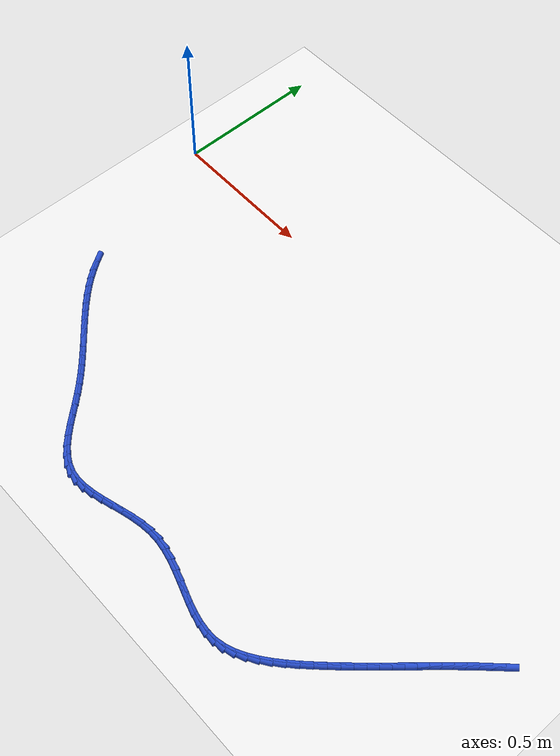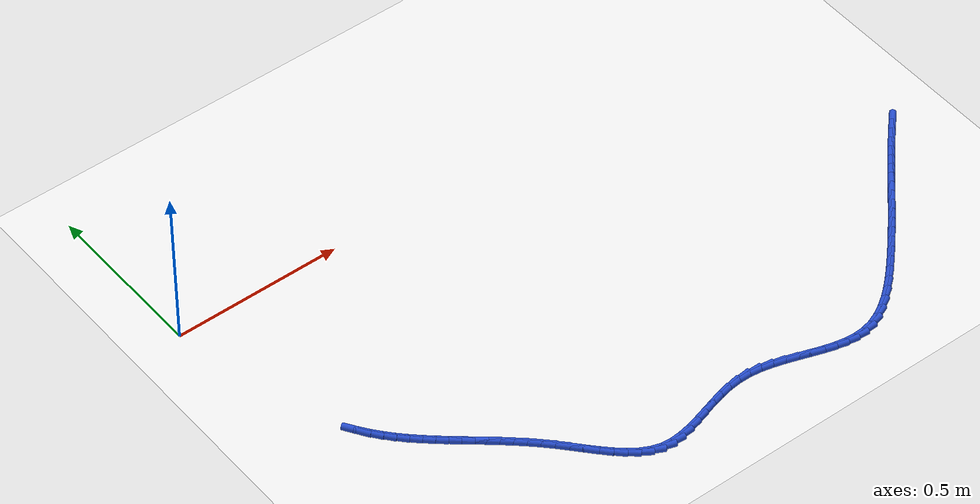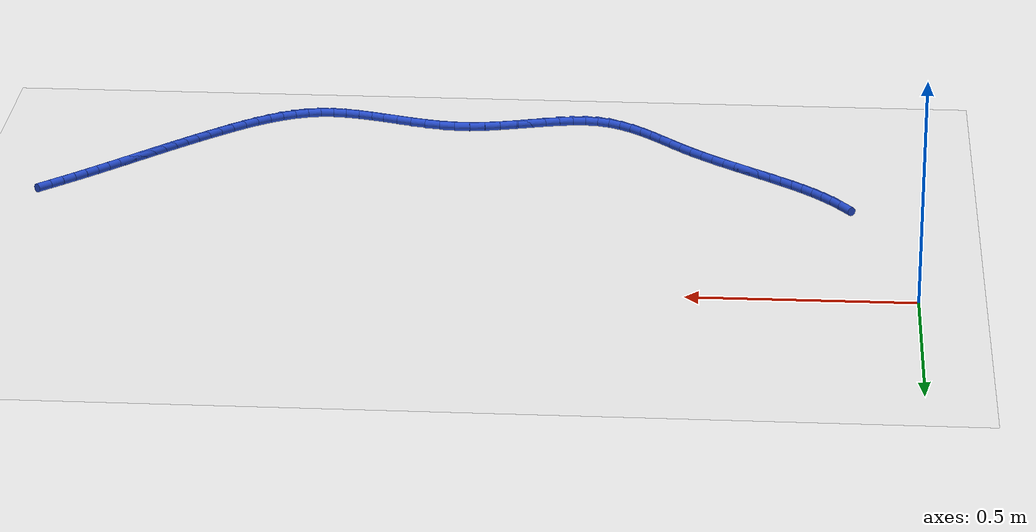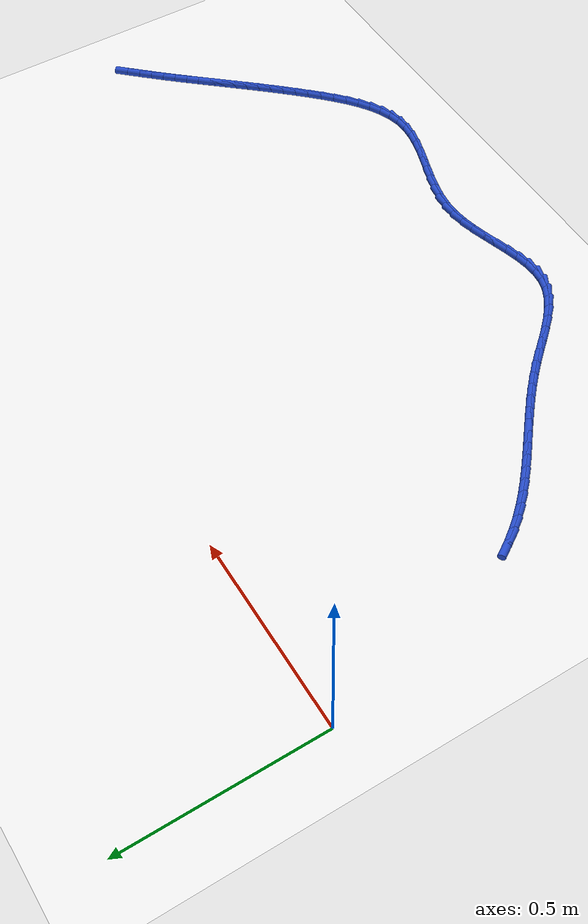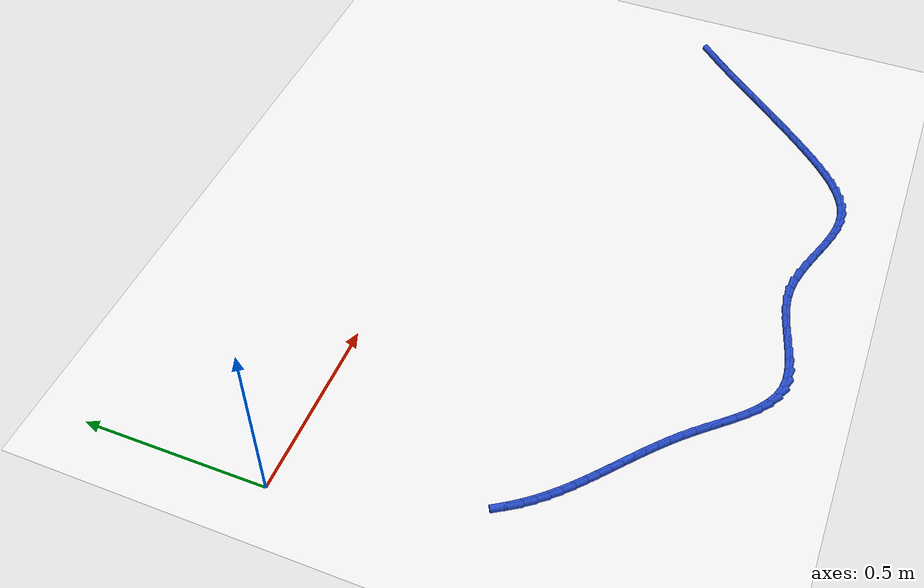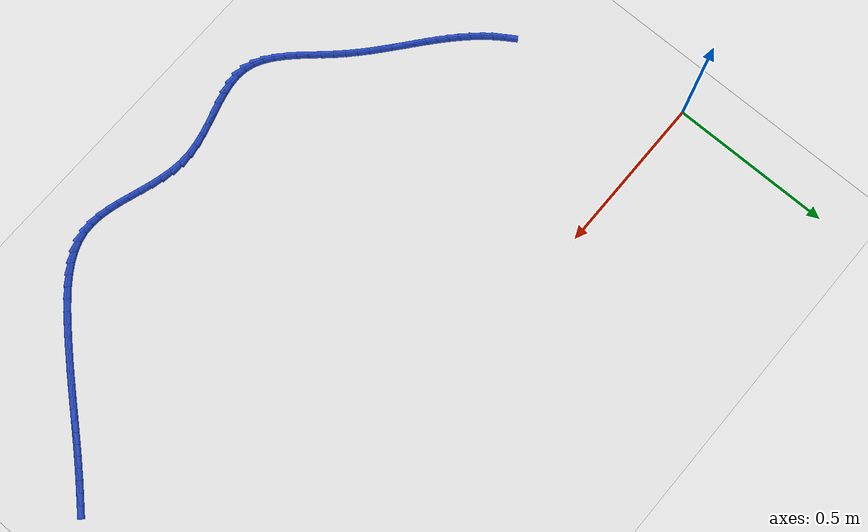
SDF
<sdf version="1.6">
 <world name="default">
  <model name="ground_plane">
   <static>1</static>
   <link name="link">
    <collision name="collision">
     <geometry><plane><normal>0 0 1</normal><size>100 100</size></plane></geometry>
     <surface><friction><ode><mu>100</mu><mu2>50</mu2></ode></friction></surface>
    </collision>
    <visual name="visual">
     <cast_shadows>0</cast_shadows>
     <geometry><plane><normal>0 0 1</normal><size>100 100</size></plane></geometry>
     <material>
      <script><uri>file://media/materials/scripts/gazebo.material</uri><name>Gazebo/WhiteGlow</name></script>
     </material>
    </visual>
   </link>
  </model>
  <model name="line">
   <link name="link_117">
    <pose>1.9566995996869232 -0.5602385863097629 0.01 0 1.57 0.8110290696298452</pose>
    <collision name="collision">
     <geometry><cylinder><radius>0.01</radius><length>0.08</length></cylinder></geometry>
    </collision>
    <visual name="visual">
     <material>
      <script><name>Gazebo/Blue</name><uri>file://media/materials/scripts/gazebo.material</uri></script>
     </material>
     <geometry><cylinder><radius>0.01</radius><length>0.08</length></cylinder></geometry>
    </visual>
   </link>
   <link name="link_118">
    <pose>1.9325285052392909 -0.5856816142168829 0.01 0 1.57 0.8147751303347857</pose>
    <collision name="collision">
     <geometry><cylinder><radius>0.01</radius><length>0.08</length></cylinder></geometry>
    </collision>
    <visual name="visual">
     <material>
      <script><name>Gazebo/Blue</name><uri>file://media/materials/scripts/gazebo.material</uri></script>
     </material>
     <geometry><cylinder><radius>0.01</radius><length>0.08</length></cylinder></geometry>
    </visual>
   </link>
   <link name="link_119">
    <pose>1.9087295957915758 -0.6109215507849404 0.01 0 1.57 0.8254772274303617</pose>
    <collision name="collision">
     <geometry><cylinder><radius>0.01</radius><length>0.08</length></cylinder></geometry>
    </collision>
    <visual name="visual">
     <material>
      <script><name>Gazebo/Blue</name><uri>file://media/materials/scripts/gazebo.material</uri></script>
     </material>
     <geometry><cylinder><radius>0.01</radius><length>0.08</length></cylinder></geometry>
    </visual>
   </link>
   <link name="link_120">
    <pose>1.8855641910838412 -0.6360224606711479 0.01 0 1.57 0.8349274374636908</pose>
    <collision name="collision">
     <geometry><cylinder><radius>0.01</radius><length>0.08</length></cylinder></geometry>
    </collision>
    <visual name="visual">
     <material>
      <script><name>Gazebo/Blue</name><uri>file://media/materials/scripts/gazebo.material</uri></script>
     </material>
     <geometry><cylinder><radius>0.01</radius><length>0.08</length></cylinder></geometry>
    </visual>
   </link>
   <link name="link_121">
    <pose>1.8629362549979693 -0.6610107228855716 0.01 0 1.57 0.8424630305905666</pose>
    <collision name="collision">
     <geometry><cylinder><radius>0.01</radius><length>0.08</length></cylinder></geometry>
    </collision>
    <visual name="visual">
     <material>
      <script><name>Gazebo/Blue</name><uri>file://media/materials/scripts/gazebo.material</uri></script>
     </material>
     <geometry><cylinder><radius>0.01</radius><length>0.08</length></cylinder></geometry>
    </visual>
   </link>
   <link name="link_122">
    <pose>1.8407277287025947 -0.6859103939908286 0.01 0 1.57 0.8479569134185778</pose>
    <collision name="collision">
     <geometry><cylinder><radius>0.01</radius><length>0.08</length></cylinder></geometry>
    </collision>
    <visual name="visual">
     <material>
      <script><name>Gazebo/Blue</name><uri>file://media/materials/scripts/gazebo.material</uri></script>
     </material>
     <geometry><cylinder><radius>0.01</radius><length>0.08</length></cylinder></geometry>
    </visual>
   </link>
   <link name="link_123">
    <pose>1.818820553366352 -0.7107455305495374 0.01 0 1.57 0.8513143874718408</pose>
    <collision name="collision">
     <geometry><cylinder><radius>0.01</radius><length>0.08</length></cylinder></geometry>
    </collision>
    <visual name="visual">
     <material>
      <script><name>Gazebo/Blue</name><uri>file://media/materials/scripts/gazebo.material</uri></script>
     </material>
     <geometry><cylinder><radius>0.01</radius><length>0.08</length></cylinder></geometry>
    </visual>
   </link>
   <link name="link_124">
    <pose>1.7970966701578759 -0.7355401891243153 0.01 0 1.57 0.852476453444885</pose>
    <collision name="collision">
     <geometry><cylinder><radius>0.01</radius><length>0.08</length></cylinder></geometry>
    </collision>
    <visual name="visual">
     <material>
      <script><name>Gazebo/Blue</name><uri>file://media/materials/scripts/gazebo.material</uri></script>
     </material>
     <geometry><cylinder><radius>0.01</radius><length>0.08</length></cylinder></geometry>
    </visual>
   </link>
   <link name="link_125">
    <pose>1.7754380202458018 -0.7603184262777807 0.01 0 1.57 0.8514218929924533</pose>
    <collision name="collision">
     <geometry><cylinder><radius>0.01</radius><length>0.08</length></cylinder></geometry>
    </collision>
    <visual name="visual">
     <material>
      <script><name>Gazebo/Blue</name><uri>file://media/materials/scripts/gazebo.material</uri></script>
     </material>
     <geometry><cylinder><radius>0.01</radius><length>0.08</length></cylinder></geometry>
    </visual>
   </link>
   <link name="link_126">
    <pose>1.7537265447987633 -0.7851042985725508 0.01 0 1.57 0.8481680348671361</pose>
    <collision name="collision">
     <geometry><cylinder><radius>0.01</radius><length>0.08</length></cylinder></geometry>
    </collision>
    <visual name="visual">
     <material>
      <script><name>Gazebo/Blue</name><uri>file://media/materials/scripts/gazebo.material</uri></script>
     </material>
     <geometry><cylinder><radius>0.01</radius><length>0.08</length></cylinder></geometry>
    </visual>
   </link>
   <link name="link_127">
    <pose>1.731844184985396 -0.8099218625712438 0.01 0 1.57 0.8427701705988891</pose>
    <collision name="collision">
     <geometry><cylinder><radius>0.01</radius><length>0.08</length></cylinder></geometry>
    </collision>
    <visual name="visual">
     <material>
      <script><name>Gazebo/Blue</name><uri>file://media/materials/scripts/gazebo.material</uri></script>
     </material>
     <geometry><cylinder><radius>0.01</radius><length>0.08</length></cylinder></geometry>
    </visual>
   </link>
   <link name="link_128">
    <pose>1.709672881974335 -0.8347951748364778 0.01 0 1.57 0.8353196431394171</pose>
    <collision name="collision">
     <geometry><cylinder><radius>0.01</radius><length>0.08</length></cylinder></geometry>
    </collision>
    <visual name="visual">
     <material>
      <script><name>Gazebo/Blue</name><uri>file://media/materials/scripts/gazebo.material</uri></script>
     </material>
     <geometry><cylinder><radius>0.01</radius><length>0.08</length></cylinder></geometry>
    </visual>
   </link>
   <link name="link_129">
    <pose>1.6870945769342143 -0.85974829193087 0.01 0 1.57 0.8259406908876092</pose>
    <collision name="collision">
     <geometry><cylinder><radius>0.01</radius><length>0.08</length></cylinder></geometry>
    </collision>
    <visual name="visual">
     <material>
      <script><name>Gazebo/Blue</name><uri>file://media/materials/scripts/gazebo.material</uri></script>
     </material>
     <geometry><cylinder><radius>0.01</radius><length>0.08</length></cylinder></geometry>
    </visual>
   </link>
   <link name="link_130">
    <pose>1.6639912110336692 -0.884805270417039 0.01 0 1.57 0.8147861893885437</pose>
    <collision name="collision">
     <geometry><cylinder><radius>0.01</radius><length>0.08</length></cylinder></geometry>
    </collision>
    <visual name="visual">
     <material>
      <script><name>Gazebo/Blue</name><uri>file://media/materials/scripts/gazebo.material</uri></script>
     </material>
     <geometry><cylinder><radius>0.01</radius><length>0.08</length></cylinder></geometry>
    </visual>
   </link>
   <link name="link_131">
    <pose>1.6402447254413344 -0.9099901668576023 0.01 0 1.57 0.8020324916885097</pose>
    <collision name="collision">
     <geometry><cylinder><radius>0.01</radius><length>0.08</length></cylinder></geometry>
    </collision>
    <visual name="visual">
     <material>
      <script><name>Gazebo/Blue</name><uri>file://media/materials/scripts/gazebo.material</uri></script>
     </material>
     <geometry><cylinder><radius>0.01</radius><length>0.08</length></cylinder></geometry>
    </visual>
   </link>
   <link name="link_132">
    <pose>1.6157370613258444 -0.9353270378151775 0.01 0 1.57 0.7860649848919025</pose>
    <collision name="collision">
     <geometry><cylinder><radius>0.01</radius><length>0.08</length></cylinder></geometry>
    </collision>
    <visual name="visual">
     <material>
      <script><name>Gazebo/Blue</name><uri>file://media/materials/scripts/gazebo.material</uri></script>
     </material>
     <geometry><cylinder><radius>0.01</radius><length>0.08</length></cylinder></geometry>
    </visual>
   </link>
   <link name="link_133">
    <pose>1.5903754888628128 -0.9607224561356739 0.01 0 1.57 0.7592781057779193</pose>
    <collision name="collision">
     <geometry><cylinder><radius>0.01</radius><length>0.08</length></cylinder></geometry>
    </collision>
    <visual name="visual">
     <material>
      <script><name>Gazebo/Blue</name><uri>file://media/materials/scripts/gazebo.material</uri></script>
     </material>
     <geometry><cylinder><radius>0.01</radius><length>0.08</length></cylinder></geometry>
    </visual>
   </link>
   <link name="link_134">
    <pose>1.5641735293253207 -0.9855901694292761 0.01 0 1.57 0.7188027896039337</pose>
    <collision name="collision">
     <geometry><cylinder><radius>0.01</radius><length>0.08</length></cylinder></geometry>
    </collision>
    <visual name="visual">
     <material>
      <script><name>Gazebo/Blue</name><uri>file://media/materials/scripts/gazebo.material</uri></script>
     </material>
     <geometry><cylinder><radius>0.01</radius><length>0.08</length></cylinder></geometry>
    </visual>
   </link>
   <link name="link_135">
    <pose>1.537172560036102 -1.0092147203890969 0.01 0 1.57 0.6627447487869007</pose>
    <collision name="collision">
     <geometry><cylinder><radius>0.01</radius><length>0.08</length></cylinder></geometry>
    </collision>
    <visual name="visual">
     <material>
      <script><name>Gazebo/Blue</name><uri>file://media/materials/scripts/gazebo.material</uri></script>
     </material>
     <geometry><cylinder><radius>0.01</radius><length>0.08</length></cylinder></geometry>
    </visual>
   </link>
   <link name="link_136">
    <pose>1.5094139584237254 -1.0308806512173638 0.01 0 1.57 0.5882120358764731</pose>
    <collision name="collision">
     <geometry><cylinder><radius>0.01</radius><length>0.08</length></cylinder></geometry>
    </collision>
    <visual name="visual">
     <material>
      <script><name>Gazebo/Blue</name><uri>file://media/materials/scripts/gazebo.material</uri></script>
     </material>
     <geometry><cylinder><radius>0.01</radius><length>0.08</length></cylinder></geometry>
    </visual>
   </link>
   <link name="link_137">
    <pose>1.4809391019167586 -1.049872504116303 0.01 0 1.57 0.491446274773474</pose>
    <collision name="collision">
     <geometry><cylinder><radius>0.01</radius><length>0.08</length></cylinder></geometry>
    </collision>
    <visual name="visual">
     <material>
      <script><name>Gazebo/Blue</name><uri>file://media/materials/scripts/gazebo.material</uri></script>
     </material>
     <geometry><cylinder><radius>0.01</radius><length>0.08</length></cylinder></geometry>
    </visual>
   </link>
   <link name="link_138">
    <pose>1.4517893679437683 -1.065474821288142 0.01 0 1.57 0.3684085443527161</pose>
    <collision name="collision">
     <geometry><cylinder><radius>0.01</radius><length>0.08</length></cylinder></geometry>
    </collision>
    <visual name="visual">
     <material>
      <script><name>Gazebo/Blue</name><uri>file://media/materials/scripts/gazebo.material</uri></script>
     </material>
     <geometry><cylinder><radius>0.01</radius><length>0.08</length></cylinder></geometry>
    </visual>
   </link>
   <link name="link_139">
    <pose>1.4220061339333234 -1.0769721449351073 0.01 0 1.57 0.21637755411428886</pose>
    <collision name="collision">
     <geometry><cylinder><radius>0.01</radius><length>0.08</length></cylinder></geometry>
    </collision>
    <visual name="visual">
     <material>
      <script><name>Gazebo/Blue</name><uri>file://media/materials/scripts/gazebo.material</uri></script>
     </material>
     <geometry><cylinder><radius>0.01</radius><length>0.08</length></cylinder></geometry>
    </visual>
   </link>
   <link name="link_140">
    <pose>1.391630775993543 -1.083649222548942 0.01 0 1.57 0.04846865775775622</pose>
    <collision name="collision">
     <geometry><cylinder><radius>0.01</radius><length>0.08</length></cylinder></geometry>
    </collision>
    <visual name="visual">
     <material>
      <script><name>Gazebo/Blue</name><uri>file://media/materials/scripts/gazebo.material</uri></script>
     </material>
     <geometry><cylinder><radius>0.01</radius><length>0.08</length></cylinder></geometry>
    </visual>
   </link>
   <link name="link_141">
    <pose>1.3607023633193174 -1.0851494561702035 0.01 0 1.57 -0.09312807365008118</pose>
    <collision name="collision">
     <geometry><cylinder><radius>0.01</radius><length>0.08</length></cylinder></geometry>
    </collision>
    <visual name="visual">
     <material>
      <script><name>Gazebo/Blue</name><uri>file://media/materials/scripts/gazebo.material</uri></script>
     </material>
     <geometry><cylinder><radius>0.01</radius><length>0.08</length></cylinder></geometry>
    </visual>
   </link>
   <link name="link_142">
    <pose>1.3292529162268403 -1.0822121331890635 0.01 0 1.57 -0.19857089339005493</pose>
    <collision name="collision">
     <geometry><cylinder><radius>0.01</radius><length>0.08</length></cylinder></geometry>
    </collision>
    <visual name="visual">
     <material>
      <script><name>Gazebo/Blue</name><uri>file://media/materials/scripts/gazebo.material</uri></script>
     </material>
     <geometry><cylinder><radius>0.01</radius><length>0.08</length></cylinder></geometry>
    </visual>
   </link>
   <link name="link_143">
    <pose>1.297313113412432 -1.075785121910302 0.01 0 1.57 -0.2700576700416624</pose>
    <collision name="collision">
     <geometry><cylinder><radius>0.01</radius><length>0.08</length></cylinder></geometry>
    </collision>
    <visual name="visual">
     <material>
      <script><name>Gazebo/Blue</name><uri>file://media/materials/scripts/gazebo.material</uri></script>
     </material>
     <geometry><cylinder><radius>0.01</radius><length>0.08</length></cylinder></geometry>
    </visual>
   </link>
   <link name="link_144">
    <pose>1.2649136335724114 -1.066816290638697 0.01 0 1.57 -0.31129565860899794</pose>
    <collision name="collision">
     <geometry><cylinder><radius>0.01</radius><length>0.08</length></cylinder></geometry>
    </collision>
    <visual name="visual">
     <material>
      <script><name>Gazebo/Blue</name><uri>file://media/materials/scripts/gazebo.material</uri></script>
     </material>
     <geometry><cylinder><radius>0.01</radius><length>0.08</length></cylinder></geometry>
    </visual>
   </link>
   <link name="link_145">
    <pose>1.2320851554030985 -1.0562535076790285 0.01 0 1.57 -0.3253559485993906</pose>
    <collision name="collision">
     <geometry><cylinder><radius>0.01</radius><length>0.08</length></cylinder></geometry>
    </collision>
    <visual name="visual">
     <material>
      <script><name>Gazebo/Blue</name><uri>file://media/materials/scripts/gazebo.material</uri></script>
     </material>
     <geometry><cylinder><radius>0.01</radius><length>0.08</length></cylinder></geometry>
    </visual>
   </link>
   <link name="link_146">
    <pose>1.1988583576008123 -1.0450446413360759 0.01 0 1.57 -0.3139327231102054</pose>
    <collision name="collision">
     <geometry><cylinder><radius>0.01</radius><length>0.08</length></cylinder></geometry>
    </collision>
    <visual name="visual">
     <material>
      <script><name>Gazebo/Blue</name><uri>file://media/materials/scripts/gazebo.material</uri></script>
     </material>
     <geometry><cylinder><radius>0.01</radius><length>0.08</length></cylinder></geometry>
    </visual>
   </link>
   <link name="link_147">
    <pose>1.1652639188618719 -1.0341375599146174 0.01 0 1.57 -0.27728420221543215</pose>
    <collision name="collision">
     <geometry><cylinder><radius>0.01</radius><length>0.08</length></cylinder></geometry>
    </collision>
    <visual name="visual">
     <material>
      <script><name>Gazebo/Blue</name><uri>file://media/materials/scripts/gazebo.material</uri></script>
     </material>
     <geometry><cylinder><radius>0.01</radius><length>0.08</length></cylinder></geometry>
    </visual>
   </link>
   <link name="link_148">
    <pose>1.1313325178825968 -1.0244801317194332 0.01 0 1.57 -0.21453285445673922</pose>
    <collision name="collision">
     <geometry><cylinder><radius>0.01</radius><length>0.08</length></cylinder></geometry>
    </collision>
    <visual name="visual">
     <material>
      <script><name>Gazebo/Blue</name><uri>file://media/materials/scripts/gazebo.material</uri></script>
     </material>
     <geometry><cylinder><radius>0.01</radius><length>0.08</length></cylinder></geometry>
    </visual>
   </link>
   <link name="link_149">
    <pose>1.097094833359307 -1.017020225055302 0.01 0 1.57 -0.12436514092348651</pose>
    <collision name="collision">
     <geometry><cylinder><radius>0.01</radius><length>0.08</length></cylinder></geometry>
    </collision>
    <visual name="visual">
     <material>
      <script><name>Gazebo/Blue</name><uri>file://media/materials/scripts/gazebo.material</uri></script>
     </material>
     <geometry><cylinder><radius>0.01</radius><length>0.08</length></cylinder></geometry>
    </visual>
   </link>
   <link name="link_150">
    <pose>1.0625815439883215 -1.0127057082270037 0.01 0 1.57 -0.006737280858204666</pose>
    <collision name="collision">
     <geometry><cylinder><radius>0.01</radius><length>0.08</length></cylinder></geometry>
    </collision>
    <visual name="visual">
     <material>
      <script><name>Gazebo/Blue</name><uri>file://media/materials/scripts/gazebo.material</uri></script>
     </material>
     <geometry><cylinder><radius>0.01</radius><length>0.08</length></cylinder></geometry>
    </visual>
   </link>
   <link name="link_151">
    <pose>1.0278242342555057 -1.012471534926331 0.01 0 1.57 0.1140944067659942</pose>
    <collision name="collision">
     <geometry><cylinder><radius>0.01</radius><length>0.08</length></cylinder></geometry>
    </collision>
    <visual name="visual">
     <material>
      <script><name>Gazebo/Blue</name><uri>file://media/materials/scripts/gazebo.material</uri></script>
     </material>
     <geometry><cylinder><radius>0.01</radius><length>0.08</length></cylinder></geometry>
    </visual>
   </link>
   <link name="link_152">
    <pose>0.9929092050457099 -1.0164725205447405 0.01 0 1.57 0.20285618297099367</pose>
    <collision name="collision">
     <geometry><cylinder><radius>0.01</radius><length>0.08</length></cylinder></geometry>
    </collision>
    <visual name="visual">
     <material>
      <script><name>Gazebo/Blue</name><uri>file://media/materials/scripts/gazebo.material</uri></script>
     </material>
     <geometry><cylinder><radius>0.01</radius><length>0.08</length></cylinder></geometry>
    </visual>
   </link>
   <link name="link_153">
    <pose>0.9580077805355918 -1.0236512309911008 0.01 0 1.57 0.2589498793128995</pose>
    <collision name="collision">
     <geometry><cylinder><radius>0.01</radius><length>0.08</length></cylinder></geometry>
    </collision>
    <visual name="visual">
     <material>
      <script><name>Gazebo/Blue</name><uri>file://media/materials/scripts/gazebo.material</uri></script>
     </material>
     <geometry><cylinder><radius>0.01</radius><length>0.08</length></cylinder></geometry>
    </visual>
   </link>
   <link name="link_154">
    <pose>0.9232986236700798 -1.032845597104875 0.01 0 1.57 0.28466981612292613</pose>
    <collision name="collision">
     <geometry><cylinder><radius>0.01</radius><length>0.08</length></cylinder></geometry>
    </collision>
    <visual name="visual">
     <material>
      <script><name>Gazebo/Blue</name><uri>file://media/materials/scripts/gazebo.material</uri></script>
     </material>
     <geometry><cylinder><radius>0.01</radius><length>0.08</length></cylinder></geometry>
    </visual>
   </link>
   <link name="link_155">
    <pose>0.8889603973941019 -1.0428935497255256 0.01 0 1.57 0.28063959911772146</pose>
    <collision name="collision">
     <geometry><cylinder><radius>0.01</radius><length>0.08</length></cylinder></geometry>
    </collision>
    <visual name="visual">
     <material>
      <script><name>Gazebo/Blue</name><uri>file://media/materials/scripts/gazebo.material</uri></script>
     </material>
     <geometry><cylinder><radius>0.01</radius><length>0.08</length></cylinder></geometry>
    </visual>
   </link>
   <link name="link_156">
    <pose>0.8551717646525862 -1.052633019692516 0.01 0 1.57 0.2450875258620053</pose>
    <collision name="collision">
     <geometry><cylinder><radius>0.01</radius><length>0.08</length></cylinder></geometry>
    </collision>
    <visual name="visual">
     <material>
      <script><name>Gazebo/Blue</name><uri>file://media/materials/scripts/gazebo.material</uri></script>
     </material>
     <geometry><cylinder><radius>0.01</radius><length>0.08</length></cylinder></geometry>
    </visual>
   </link>
   <link name="link_157">
    <pose>0.8221113883904607 -1.0609019378453088 0.01 0 1.57 0.17353058756435386</pose>
    <collision name="collision">
     <geometry><cylinder><radius>0.01</radius><length>0.08</length></cylinder></geometry>
    </collision>
    <visual name="visual">
     <material>
      <script><name>Gazebo/Blue</name><uri>file://media/materials/scripts/gazebo.material</uri></script>
     </material>
     <geometry><cylinder><radius>0.01</radius><length>0.08</length></cylinder></geometry>
    </visual>
   </link>
   <link name="link_158">
    <pose>0.7899579315526541 -1.0665382350233674 0.01 0 1.57 0.05920761005113382</pose>
    <collision name="collision">
     <geometry><cylinder><radius>0.01</radius><length>0.08</length></cylinder></geometry>
    </collision>
    <visual name="visual">
     <material>
      <script><name>Gazebo/Blue</name><uri>file://media/materials/scripts/gazebo.material</uri></script>
     </material>
     <geometry><cylinder><radius>0.01</radius><length>0.08</length></cylinder></geometry>
    </visual>
   </link>
   <link name="link_159">
    <pose>0.7588900570840945 -1.0683798420661546 0.01 0 1.57 -0.1041444217528235</pose>
    <collision name="collision">
     <geometry><cylinder><radius>0.01</radius><length>0.08</length></cylinder></geometry>
    </collision>
    <visual name="visual">
     <material>
      <script><name>Gazebo/Blue</name><uri>file://media/materials/scripts/gazebo.material</uri></script>
     </material>
     <geometry><cylinder><radius>0.01</radius><length>0.08</length></cylinder></geometry>
    </visual>
   </link>
   <link name="link_160">
    <pose>0.7290864279297097 -1.0652646898131335 0.01 0 1.57 -0.30672337327285715</pose>
    <collision name="collision">
     <geometry><cylinder><radius>0.01</radius><length>0.08</length></cylinder></geometry>
    </collision>
    <visual name="visual">
     <material>
      <script><name>Gazebo/Blue</name><uri>file://media/materials/scripts/gazebo.material</uri></script>
     </material>
     <geometry><cylinder><radius>0.01</radius><length>0.08</length></cylinder></geometry>
    </visual>
   </link>
   <link name="link_161">
    <pose>0.7006783031685104 -1.0562673128620614 0.01 0 1.57 -0.48836406940820687</pose>
    <collision name="collision">
     <geometry><cylinder><radius>0.01</radius><length>0.08</length></cylinder></geometry>
    </collision>
    <visual name="visual">
     <material>
      <script><name>Gazebo/Blue</name><uri>file://media/materials/scripts/gazebo.material</uri></script>
     </material>
     <geometry><cylinder><radius>0.01</radius><length>0.08</length></cylinder></geometry>
    </visual>
   </link>
   <link name="link_162">
    <pose>0.6735211067214493 -1.041839003461211 0.01 0 1.57 -0.6261112789386448</pose>
    <collision name="collision">
     <geometry><cylinder><radius>0.01</radius><length>0.08</length></cylinder></geometry>
    </collision>
    <visual name="visual">
     <material>
      <script><name>Gazebo/Blue</name><uri>file://media/materials/scripts/gazebo.material</uri></script>
     </material>
     <geometry><cylinder><radius>0.01</radius><length>0.08</length></cylinder></geometry>
    </visual>
   </link>
   <link name="link_163">
    <pose>0.6473707568139534 -1.0229277100086671 0.01 0 1.57 -0.7239691684366246</pose>
    <collision name="collision">
     <geometry><cylinder><radius>0.01</radius><length>0.08</length></cylinder></geometry>
    </collision>
    <visual name="visual">
     <material>
      <script><name>Gazebo/Blue</name><uri>file://media/materials/scripts/gazebo.material</uri></script>
     </material>
     <geometry><cylinder><radius>0.01</radius><length>0.08</length></cylinder></geometry>
    </visual>
   </link>
   <link name="link_164">
    <pose>0.6219830378104889 -1.0004820490338127 0.01 0 1.57 -0.7886467673556585</pose>
    <collision name="collision">
     <geometry><cylinder><radius>0.01</radius><length>0.08</length></cylinder></geometry>
    </collision>
    <visual name="visual">
     <material>
      <script><name>Gazebo/Blue</name><uri>file://media/materials/scripts/gazebo.material</uri></script>
     </material>
     <geometry><cylinder><radius>0.01</radius><length>0.08</length></cylinder></geometry>
    </visual>
   </link>
   <link name="link_165">
    <pose>0.5971137340755226 -0.9754506370660306 0.01 0 1.57 -0.8258227673238779</pose>
    <collision name="collision">
     <geometry><cylinder><radius>0.01</radius><length>0.08</length></cylinder></geometry>
    </collision>
    <visual name="visual">
     <material>
      <script><name>Gazebo/Blue</name><uri>file://media/materials/scripts/gazebo.material</uri></script>
     </material>
     <geometry><cylinder><radius>0.01</radius><length>0.08</length></cylinder></geometry>
    </visual>
   </link>
   <link name="link_166">
    <pose>0.5725186299735205 -0.9487820906347038 0.01 0 1.57 -0.8391181306106418</pose>
    <collision name="collision">
     <geometry><cylinder><radius>0.01</radius><length>0.08</length></cylinder></geometry>
    </collision>
    <visual name="visual">
     <material>
      <script><name>Gazebo/Blue</name><uri>file://media/materials/scripts/gazebo.material</uri></script>
     </material>
     <geometry><cylinder><radius>0.01</radius><length>0.08</length></cylinder></geometry>
    </visual>
   </link>
   <link name="link_167">
    <pose>0.5479535098689498 -0.9214250262692155 0.01 0 1.57 -0.8300442380534074</pose>
    <collision name="collision">
     <geometry><cylinder><radius>0.01</radius><length>0.08</length></cylinder></geometry>
    </collision>
    <visual name="visual">
     <material>
      <script><name>Gazebo/Blue</name><uri>file://media/materials/scripts/gazebo.material</uri></script>
     </material>
     <geometry><cylinder><radius>0.01</radius><length>0.08</length></cylinder></geometry>
    </visual>
   </link>
   <link name="link_168">
    <pose>0.5231741581262754 -0.894328060498948 0.01 0 1.57 -0.799946973987369</pose>
    <collision name="collision">
     <geometry><cylinder><radius>0.01</radius><length>0.08</length></cylinder></geometry>
    </collision>
    <visual name="visual">
     <material>
      <script><name>Gazebo/Blue</name><uri>file://media/materials/scripts/gazebo.material</uri></script>
     </material>
     <geometry><cylinder><radius>0.01</radius><length>0.08</length></cylinder></geometry>
    </visual>
   </link>
   <link name="link_169">
    <pose>0.49795935227971905 -0.8683686785520666 0.01 0 1.57 -0.7653900822632183</pose>
    <collision name="collision">
     <geometry><cylinder><radius>0.01</radius><length>0.08</length></cylinder></geometry>
    </collision>
    <visual name="visual">
     <material>
      <script><name>Gazebo/Blue</name><uri>file://media/materials/scripts/gazebo.material</uri></script>
     </material>
     <geometry><cylinder><radius>0.01</radius><length>0.08</length></cylinder></geometry>
    </visual>
   </link>
   <link name="link_170">
    <pose>0.4723128300707396 -0.8437284323672553 0.01 0 1.57 -0.7366511998061999</pose>
    <collision name="collision">
     <geometry><cylinder><radius>0.01</radius><length>0.08</length></cylinder></geometry>
    </collision>
    <visual name="visual">
     <material>
      <script><name>Gazebo/Blue</name><uri>file://media/materials/scripts/gazebo.material</uri></script>
     </material>
     <geometry><cylinder><radius>0.01</radius><length>0.08</length></cylinder></geometry>
    </visual>
   </link>
   <link name="link_171">
    <pose>0.4463656028045256 -0.8201951424274966 0.01 0 1.57 -0.714300033627225</pose>
    <collision name="collision">
     <geometry><cylinder><radius>0.01</radius><length>0.08</length></cylinder></geometry>
    </collision>
    <visual name="visual">
     <material>
      <script><name>Gazebo/Blue</name><uri>file://media/materials/scripts/gazebo.material</uri></script>
     </material>
     <geometry><cylinder><radius>0.01</radius><length>0.08</length></cylinder></geometry>
    </visual>
   </link>
   <link name="link_172">
    <pose>0.42025012778772824 -0.7975521558888384 0.01 0 1.57 -0.6987107824308225</pose>
    <collision name="collision">
     <geometry><cylinder><radius>0.01</radius><length>0.08</length></cylinder></geometry>
    </collision>
    <visual name="visual">
     <material>
      <script><name>Gazebo/Blue</name><uri>file://media/materials/scripts/gazebo.material</uri></script>
     </material>
     <geometry><cylinder><radius>0.01</radius><length>0.08</length></cylinder></geometry>
    </visual>
   </link>
   <link name="link_173">
    <pose>0.39409886232699876 -0.7755828199073272 0.01 0 1.57 -0.6901948740662208</pose>
    <collision name="collision">
     <geometry><cylinder><radius>0.01</radius><length>0.08</length></cylinder></geometry>
    </collision>
    <visual name="visual">
     <material>
      <script><name>Gazebo/Blue</name><uri>file://media/materials/scripts/gazebo.material</uri></script>
     </material>
     <geometry><cylinder><radius>0.01</radius><length>0.08</length></cylinder></geometry>
    </visual>
   </link>
   <link name="link_174">
    <pose>0.3680442637289884 -0.7540704816390109 0.01 0 1.57 -0.6890156504893492</pose>
    <collision name="collision">
     <geometry><cylinder><radius>0.01</radius><length>0.08</length></cylinder></geometry>
    </collision>
    <visual name="visual">
     <material>
      <script><name>Gazebo/Blue</name><uri>file://media/materials/scripts/gazebo.material</uri></script>
     </material>
     <geometry><cylinder><radius>0.01</radius><length>0.08</length></cylinder></geometry>
    </visual>
   </link>
   <link name="link_175">
    <pose>0.3422187893003483 -0.7327984882399363 0.01 0 1.57 -0.6953959098000956</pose>
    <collision name="collision">
     <geometry><cylinder><radius>0.01</radius><length>0.08</length></cylinder></geometry>
    </collision>
    <visual name="visual">
     <material>
      <script><name>Gazebo/Blue</name><uri>file://media/materials/scripts/gazebo.material</uri></script>
     </material>
     <geometry><cylinder><radius>0.01</radius><length>0.08</length></cylinder></geometry>
    </visual>
   </link>
   <link name="link_176">
    <pose>0.3167548963477298 -0.7115501868661506 0.01 0 1.57 -0.7095151243584233</pose>
    <collision name="collision">
     <geometry><cylinder><radius>0.01</radius><length>0.08</length></cylinder></geometry>
    </collision>
    <visual name="visual">
     <material>
      <script><name>Gazebo/Blue</name><uri>file://media/materials/scripts/gazebo.material</uri></script>
     </material>
     <geometry><cylinder><radius>0.01</radius><length>0.08</length></cylinder></geometry>
    </visual>
   </link>
   <link name="link_177">
    <pose>0.291785042177784 -0.690108924673701 0.01 0 1.57 -0.7314938677140189</pose>
    <collision name="collision">
     <geometry><cylinder><radius>0.01</radius><length>0.08</length></cylinder></geometry>
    </collision>
    <visual name="visual">
     <material>
      <script><name>Gazebo/Blue</name><uri>file://media/materials/scripts/gazebo.material</uri></script>
     </material>
     <geometry><cylinder><radius>0.01</radius><length>0.08</length></cylinder></geometry>
    </visual>
   </link>
   <link name="link_178">
    <pose>0.2674416840971622 -0.6682580488186349 0.01 0 1.57 -0.7613640354452385</pose>
    <collision name="collision">
     <geometry><cylinder><radius>0.01</radius><length>0.08</length></cylinder></geometry>
    </collision>
    <visual name="visual">
     <material>
      <script><name>Gazebo/Blue</name><uri>file://media/materials/scripts/gazebo.material</uri></script>
     </material>
     <geometry><cylinder><radius>0.01</radius><length>0.08</length></cylinder></geometry>
    </visual>
   </link>
   <link name="link_179">
    <pose>0.24385727941251562 -0.6457809064569995 0.01 0 1.57 -0.7990253590837175</pose>
    <collision name="collision">
     <geometry><cylinder><radius>0.01</radius><length>0.08</length></cylinder></geometry>
    </collision>
    <visual name="visual">
     <material>
      <script><name>Gazebo/Blue</name><uri>file://media/materials/scripts/gazebo.material</uri></script>
     </material>
     <geometry><cylinder><radius>0.01</radius><length>0.08</length></cylinder></geometry>
    </visual>
   </link>
   <link name="link_180">
    <pose>0.22116428543049543 -0.6224608447448419 0.01 0 1.57 -0.844192017300093</pose>
    <collision name="collision">
     <geometry><cylinder><radius>0.01</radius><length>0.08</length></cylinder></geometry>
    </collision>
    <visual name="visual">
     <material>
      <script><name>Gazebo/Blue</name><uri>file://media/materials/scripts/gazebo.material</uri></script>
     </material>
     <geometry><cylinder><radius>0.01</radius><length>0.08</length></cylinder></geometry>
    </visual>
   </link>
   <link name="link_181">
    <pose>0.19949515945775287 -0.5980812108382093 0.01 0 1.57 -0.8959849252707051</pose>
    <collision name="collision">
     <geometry><cylinder><radius>0.01</radius><length>0.08</length></cylinder></geometry>
    </collision>
    <visual name="visual">
     <material>
      <script><name>Gazebo/Blue</name><uri>file://media/materials/scripts/gazebo.material</uri></script>
     </material>
     <geometry><cylinder><radius>0.01</radius><length>0.08</length></cylinder></geometry>
    </visual>
   </link>
   <link name="link_182">
    <pose>0.17897711356075593 -0.5724373577140797 0.01 0 1.57 -0.9484144500851596</pose>
    <collision name="collision">
     <geometry><cylinder><radius>0.01</radius><length>0.08</length></cylinder></geometry>
    </collision>
    <visual name="visual">
     <material>
      <script><name>Gazebo/Blue</name><uri>file://media/materials/scripts/gazebo.material</uri></script>
     </material>
     <geometry><cylinder><radius>0.01</radius><length>0.08</length></cylinder></geometry>
    </visual>
   </link>
   <link name="link_183">
    <pose>0.1596564003294062 -0.5455099463514167 0.01 0 1.57 -0.997287875757804</pose>
    <collision name="collision">
     <geometry><cylinder><radius>0.01</radius><length>0.08</length></cylinder></geometry>
    </collision>
    <visual name="visual">
     <material>
      <script><name>Gazebo/Blue</name><uri>file://media/materials/scripts/gazebo.material</uri></script>
     </material>
     <geometry><cylinder><radius>0.01</radius><length>0.08</length></cylinder></geometry>
    </visual>
   </link>
  </model>
 </world>
</sdf>
